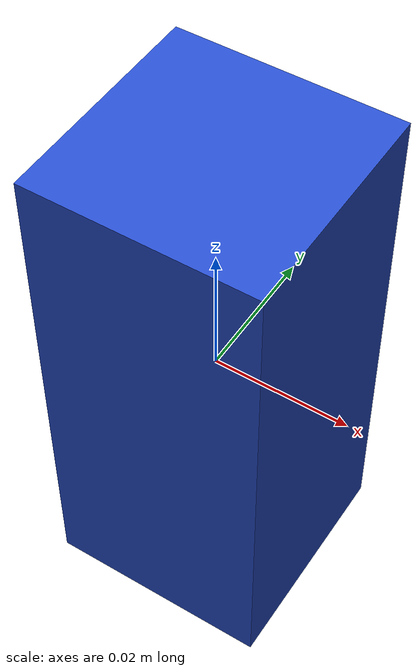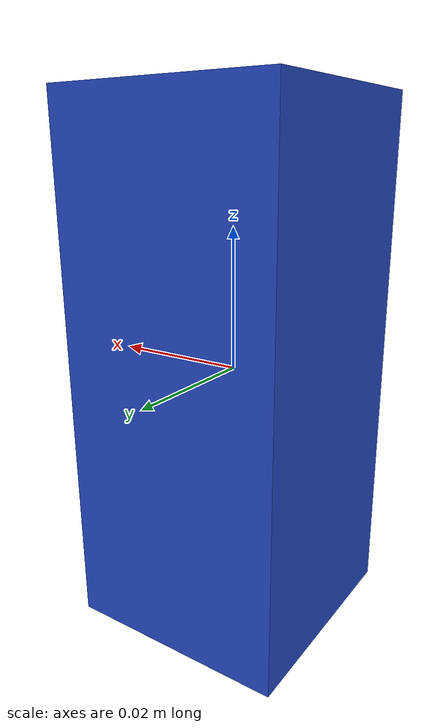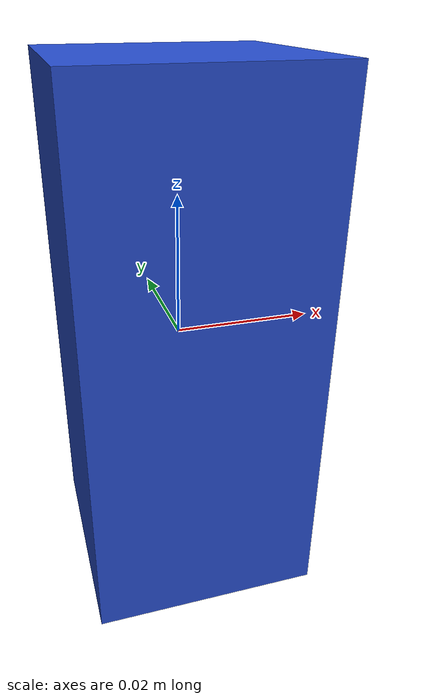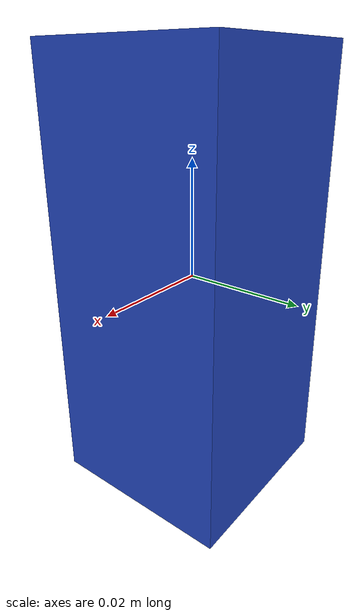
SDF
<?xml version="1.0" ?>
<sdf version="1.5">
  <model name="cube_long">
	  <static>false</static>
	    <link name="link">
	      <inertial>
		<mass>0.3</mass>
		<inertia>
		  <ixx>0.083</ixx>
		  <ixy>0.0</ixy>
		  <ixz>0.0</ixz>
		  <iyy>0.083</iyy>
		  <iyz>0.0</iyz>
		  <izz>0.083</izz>
		</inertia>
	    </inertial>
	    <collision name="collision">
			<geometry>
			  <box>
			    <size>0.0325 0.0325 0.075</size>
			  </box>
			</geometry>
	    </collision>
	    <visual name="visual">
			<geometry>
			  <box>
			    <size>0.0325 0.0325 0.075</size>
			  </box>
			</geometry>
			<material>
		          <script>
		            <uri>file://media/materials/scripts/gazebo.material</uri>
		            <name>Gazebo/Blue</name>
		          </script>
	        </material>
	      </visual>
	    </link>
    </model>
</sdf>
